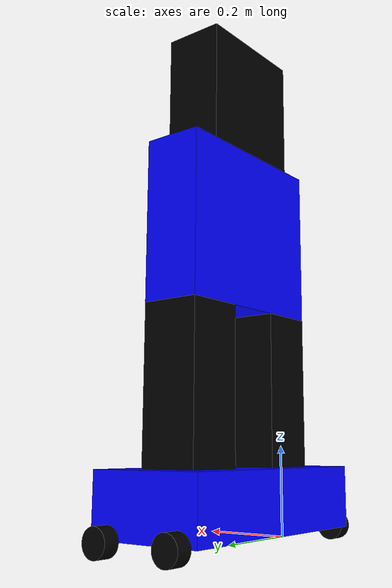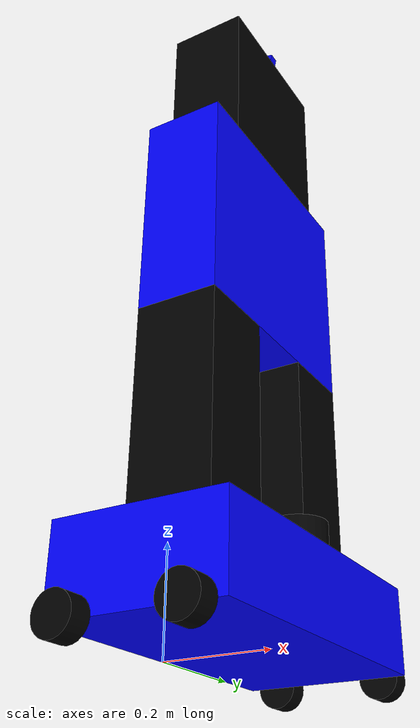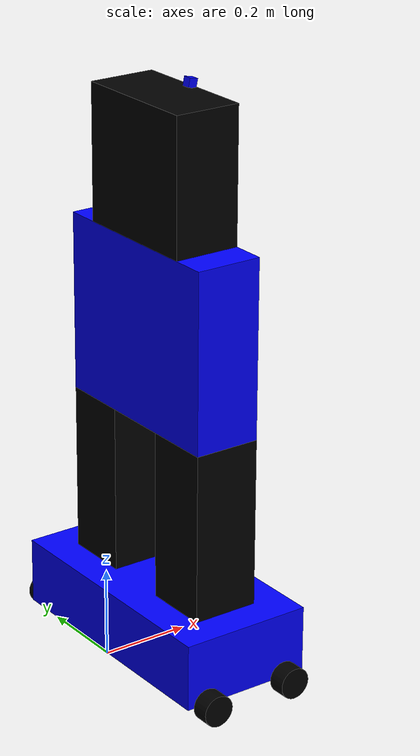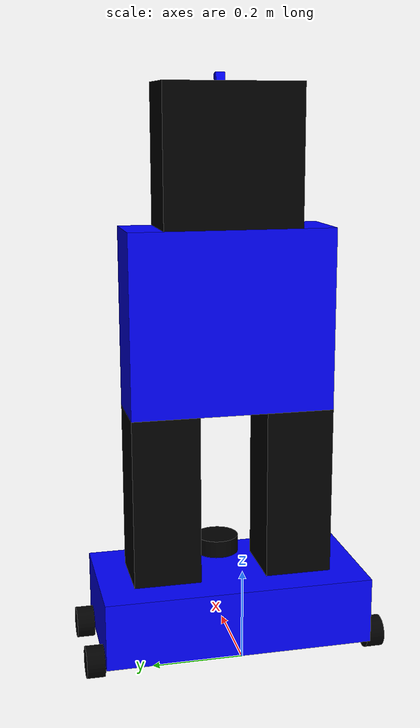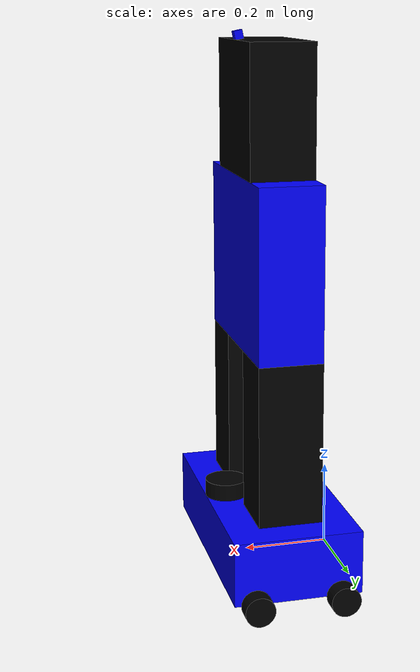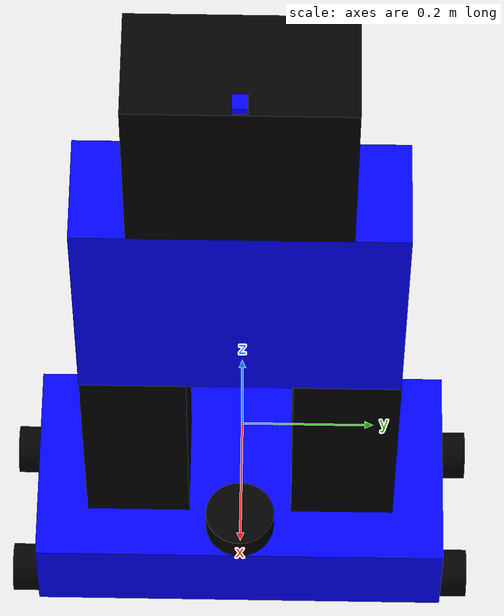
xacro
<?xml version="1.0"?>
<robot xmlns:xacro="http://www.ros.org/wiki/xacro"  name="robot">

<xacro:arg name="use_ros2_controller" default="true"/>
<xacro:arg name="sim_mode" default="false"/>
<xacro:include filename="robot_core.xacro"/>

<xacro:if value="$(arg use_ros2_controller)">
    <xacro:include filename="ros2_controller.xacro"/>
</xacro:if>
<xacro:unless value="$(arg use_ros2_controller)">
    <xacro:include filename="gazebo_controller.xacro"/>
</xacro:unless>

<xacro:include filename="lidar.xacro"/>
<xacro:include filename="camera.xacro"/>

</robot>

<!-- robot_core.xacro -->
<robot xmlns:xacro="http://www.ros.org/wiki/xacro">

  <xacro:include filename="inertial_macros.xacro"/>

  <material name="Blue">
    <color rgba="0 0 1 1"/>
  </material>
  <material name="Black">
    <color rgba="0 0 0 1"/>
  </material>

  <link name="base_link">
    <visual>
      <origin xyz="0.15 0.0 0.075"/>
      <geometry>
        <box size="0.30 0.60 0.15"/>
      </geometry>
      <material name="Blue"/>
    </visual>
    <collision>
      <origin xyz="0.15 0.0 0.075"/>
      <geometry>
        <box size="0.30 0.60 0.15"/>
      </geometry>
    </collision>
    <xacro:inertial_box  mass="5.0" x="0.30" y="0.60" z="0.15">
      <origin xyz="0.15 0.0 0.075" rpy= "0.0 0.0 0.0"/>
    </xacro:inertial_box>
  </link>
  <link name="base_footprint">
  </link>
  <joint name="base_footprint_joint" type="fixed">
    <parent link="base_link"/>
    <child link="base_footprint"/>
    <origin xyz="0 0 0.0" rpy="0 0 0"/>
  </joint>

  <!--front left wheel-->
  <joint name="front_left_wheel_joint" type="continuous">
    <parent link="base_link"/>
    <child link="front_left_wheel"/>
    <origin xyz="0.25 0.32 0.0" rpy="-${pi/2} 0.0 0.0"/>
    <axis xyz="0.0 0.0 1.0"/>
  </joint>
  <link name="front_left_wheel">
    <visual>
      <geometry>
        <cylinder radius="0.035" length="0.04"/>
      </geometry>
      <material name="Black"/>
    </visual>
    <collision>
      <geometry>
        <sphere radius="0.035"/>
      </geometry>
    </collision>
    <xacro:inertial_cylinder  mass="0.10" radius="0.035" length="0.04">
      <origin xyz="0.0 0.0 0.0" rpy= "0.0 0.0 0.0"/>
    </xacro:inertial_cylinder>
    </link>

    <!--front right wheel-->
  <joint name="front_right_wheel_joint" type="continuous">
    <parent link="base_link"/>
    <child link="front_right_wheel"/>
    <origin xyz="0.25 -0.32 0.0" rpy=" ${pi/2} 0.0 0.0"/>
    <axis xyz="0.0 0.0 -1.0"/>
  </joint>

  <link name="front_right_wheel">
    <visual>
      <geometry>
        <cylinder radius="0.035" length="0.04"/>
      </geometry>
      <material name="Black"/>
    </visual>
    <collision>
      <geometry>
        <sphere radius="0.035"/>
      </geometry>
    </collision>
    <xacro:inertial_cylinder  mass="0.10" radius="0.035" length="0.04">
      <origin xyz="0.0 0.0 0.0" rpy= "0.0 0.0 0.0"/>
    </xacro:inertial_cylinder>
  </link>
  <!--back left wheel-->
  <joint name="back_left_wheel_joint" type="continuous">
    <parent link="base_link"/>
    <child link="back_left_wheel"/>
    <origin xyz="0.05 0.32 0.0" rpy="-${pi/2} 0.0 0.0"/>
    <axis xyz="0.0 0.0 1.0"/>
  </joint>

  <link name="back_left_wheel">
    <visual>
      <geometry>
        <cylinder radius="0.035" length="0.04"/>
      </geometry>
      <material name="Black"/>
    </visual>
    <collision>
      <geometry>
        <sphere radius="0.035"/>
      </geometry>
    </collision>
    <xacro:inertial_cylinder  mass="0.10" radius="0.035" length="0.04">
      <origin xyz="0.0 0.0 0.0" rpy= "0.0 0.0 0.0"/>
    </xacro:inertial_cylinder>
  </link>

  <!--back right wheel-->
  <joint name="back_right_wheel_joint" type="continuous">
    <parent link="base_link"/>
    <child link="back_right_wheel"/>
    <origin xyz="0.05 -0.32 0.0" rpy=" ${pi/2} 0.0 0.0"/>
    <axis xyz="0.0 0.0 -1.0"/>
  </joint>

  <link name="back_right_wheel">
    <visual>
      <geometry>
        <cylinder radius="0.035" length="0.04"/>
      </geometry>
      <material name="Black"/>
    </visual>
    <collision>
      <geometry>
        <sphere radius="0.035"/>
      </geometry>
    </collision>
    <xacro:inertial_cylinder  mass="0.10" radius="0.035" length="0.04">
      <origin xyz="0.0 0.0 0.0" rpy= "0.0 0.0 0.0"/>
    </xacro:inertial_cylinder>
  </link>
  <!--Left Feet-->
  <joint name="left_feet_joint" type="fixed">
    <parent link="base_link"/>
    <child link="left_feet"/>
    <origin xyz="0.15 0.15 0.34"/>
    <axis xyz="0.0 0.0 0.0"/>
  </joint>

  <link name="left_feet">
    <visual>
    <origin xyz="0.0 0.0 0.0" />
      <geometry>
        <box size="0.15 0.15 0.38"/>
      </geometry>
      <material name="Black"/>
    </visual>
    <collision>
      <geometry>
        <box size="0.15 0.15 0.38"/>
      </geometry>
    </collision>
    <xacro:inertial_box  mass="1.0" x="0.15" y="0.15" z="0.38">
      <origin xyz="0.0 0.0 0.0" rpy= "0.0 0.0 0.0"/>
    </xacro:inertial_box>
  </link>

  <!--Right Feet-->
  <joint name="right_feet_joint" type="fixed">
    <parent link="base_link"/>
    <child link="right_feet"/>
    <origin xyz="0.15 -0.15 0.34"/>
    <axis xyz="0.0 0.0 0.0"/>
  </joint>

  <link name="right_feet">
    <visual>
    <origin xyz="0.0 0.0 0.0" />
      <geometry>
        <box size="0.15 0.15 0.38"/>
      </geometry>
      <material name="Black"/>
    </visual>
    <collision>
      <geometry>
        <box size="0.15 0.15 0.38"/>
      </geometry>
    </collision>
    <xacro:inertial_box  mass="1.0" x="0.15" y="0.15" z="0.38">
      <origin xyz="0.0 0.0 0.0" rpy= "0.0 0.0 0.0"/>
    </xacro:inertial_box>
  </link>
  <!-- Body -->
  <joint name="body_joint" type="fixed">
    <parent link="base_link"/>
    <child link="body"/>
    <origin xyz="0.15 0.0 0.73"/>
    <axis xyz="0.0 0.0 0.0"/>
  </joint>

  <link name="body">
    <visual>
      <geometry>
        <box size="0.15 0.45 0.40"/>
      </geometry>
      <material name="Blue"/>
    </visual>
    <collision>
      <geometry>
        <box size="0.15 0.45 0.40"/>
      </geometry>
    </collision>
    <xacro:inertial_box  mass="0.3" x="0.15" y="0.45" z="0.40">
      <origin xyz="0.0 0.0 0.0" rpy= "0.0 0.0 0.0"/>
    </xacro:inertial_box>
  </link>

  <!--head-->
  <joint name="head_joint" type="fixed">
    <parent link="base_link"/>
    <child link="head"/>
    <origin xyz="0.15 0.0 1.08"/>
    <axis xyz="0.0 0.0 0.0"/>
  </joint>
  <link name="head">
    <visual>
      <geometry>
        <box size="0.15 0.30 0.30"/>
      </geometry>
      <material name="Black"/>
    </visual>
    <collision>
      <geometry>
        <box size="0.15 0.30 0.30"/>
      </geometry>
    </collision>
    <xacro:inertial_box  mass="0.3" x="0.15" y="0.30" z="0.40">
      <origin xyz="0.0 0.0 0.0" rpy= "0.0 0.0 0.0"/>
    </xacro:inertial_box>
  </link>
  <gazebo reference="base_link">
    <material>Gazebo/Blue</material>
  </gazebo>
  <gazebo reference="front_left_wheel">
    <material>Gazebo/Black</material>
  </gazebo>
  <gazebo reference="front_right_wheel">
    <material>Gazebo/Black</material>
  </gazebo>
  <gazebo reference="back_left_wheel">
    <material>Gazebo/Black</material>
  </gazebo>
  <gazebo reference="back_right_wheel">
    <material>Gazebo/Black</material>
  </gazebo>
  <gazebo reference="left_feet">
    <material>Gazebo/Black</material>
  </gazebo>
  <gazebo reference="right_feet">
    <material>Gazebo/Black</material>
  </gazebo>
  <gazebo reference="body">
    <material>Gazebo/Blue</material>
  </gazebo>
  <gazebo reference="head">
    <material>Gazebo/Black</material>
  </gazebo>

</robot>

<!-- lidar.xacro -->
<robot xmlns:xacro="http://www.ros.org/wiki/xacro">
    <xacro:include filename="inertial_macros.xacro"/>

  <joint name="laser_joint" type="fixed">
    <parent link="base_link"/>
    <child link="laser_frame"/>
    <origin xyz="0.25 0.0 0.17" rpy="0 0 0"/>
  </joint>

  <link name="laser_frame">
    <visual>
      <geometry>
        <cylinder radius="0.05" length="0.04"/>
      </geometry>
      <material name="Black"/>
    </visual>
    <collision>
      <geometry>
        <cylinder radius="0.05" length="0.04"/>
      </geometry>
    </collision>
    <xacro:inertial_cylinder  mass="0.01" radius="0.05" length="0.04">
      <origin xyz="0.0 0.0 0.0" rpy= "0.0 0.0 0.0"/>
    </xacro:inertial_cylinder>
    </link>

    <gazebo reference="laser_frame">
        <material>Gazebo/Red</material>
        <sensor name="laser" type="ray">
            <pose>0 0 0 0 0 0</pose>
            <visualize>true</visualize>
            <update_rate>10</update_rate>
            <ray>
                <scan>
                    <horizontal>
                        <samples>360</samples>
                        <resolution>1</resolution>
                        <min_angle>-3.14</min_angle>
                        <max_angle>3.14</max_angle>
                    </horizontal>
                </scan>
                <range>
                    <min>0.3</min>
                    <max>12.0</max>
                    <resolution>0.01</resolution>
                </range>
            </ray>
            <plugin name="gazebo_ros_laser" filename="libgazebo_ros_ray_sensor.so">
                <ros>
                    <argument>~/out:=scan</argument>
                </ros>
                <output_type>sensor_msgs/LaserScan</output_type>
                <frameName>laser_frame</frameName>
            </plugin>
        </sensor>
    </gazebo>

</robot>

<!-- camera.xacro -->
<robot xmlns:xacro="http://www.ros.org/wiki/xacro">

  <joint name="camera_joint" type="fixed">
    <parent link="head"/>
    <child link="camera_link"/>
    <origin xyz="0.065 0.0 0.16" rpy="0 0.2 0"/>
  </joint>
  <link name="camera_link">
    <visual>
      <geometry>
        <box size="0.02 0.02 0.02"/>
      </geometry>
      <material name="Blue"/>
    </visual>
  </link>

  <joint name="camera_optical_joint" type="fixed">
    <parent link="camera_link"/>
    <child link="camera_link_optical"/>
    <origin xyz="0 0 0 " rpy="${-pi/2} 0 ${-pi/2}"/>
  </joint>
  <link name="camera_link_optical"></link>

    <gazebo reference="camera_link">
        <material>Gazebo/Red</material>

        <sensor name="camera" type="camera">
            <pose>0 0 0 0 0 0</pose>
            <visualize>true</visualize>
            <update_rate>10</update_rate>
            <camera>
                <horizontal_fov>1.089</horizontal_fov>
                <image>
                    <width>640</width>
                    <height>480</height>
                    <format>R8G8B8</format>
                </image>
                <clip>
                    <near>0.05</near>
                    <far>8.0</far>
                </clip>
            </camera>
            <plugin name="camera_controller" filename="libgazebo_ros_camera.so">
                <frameName>camera_link_optical</frameName>
            </plugin>
        </sensor>
    </gazebo>

</robot>
